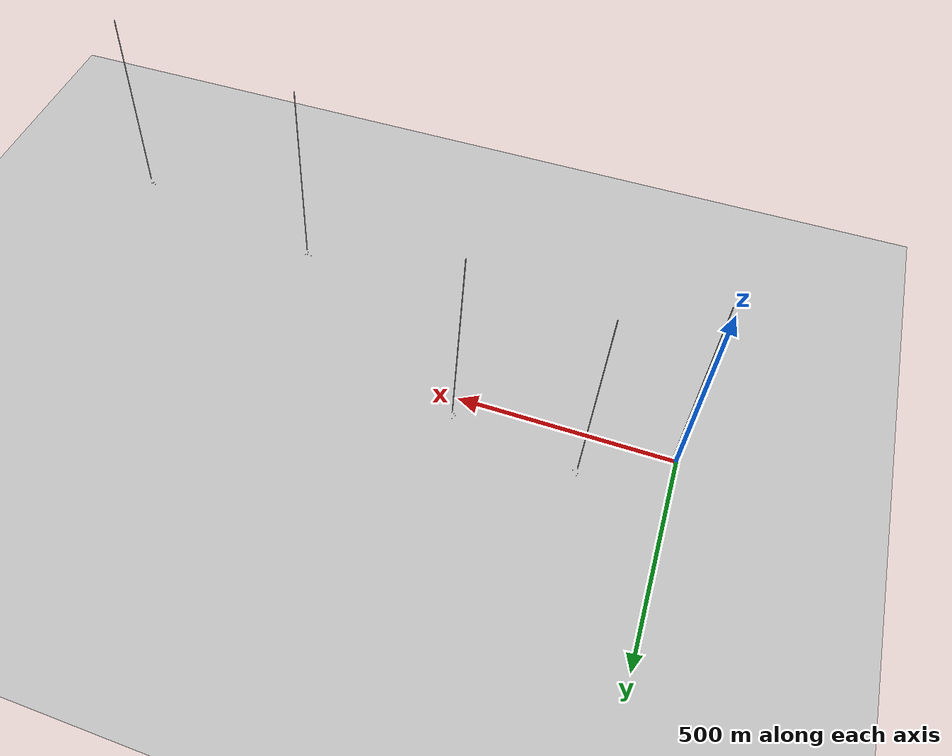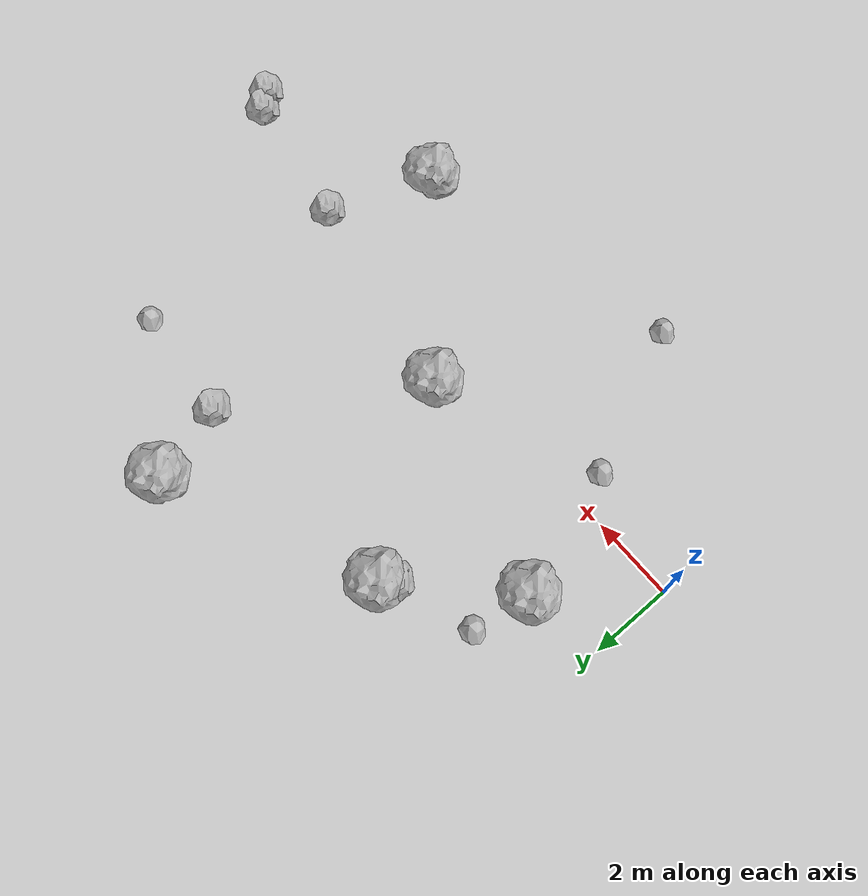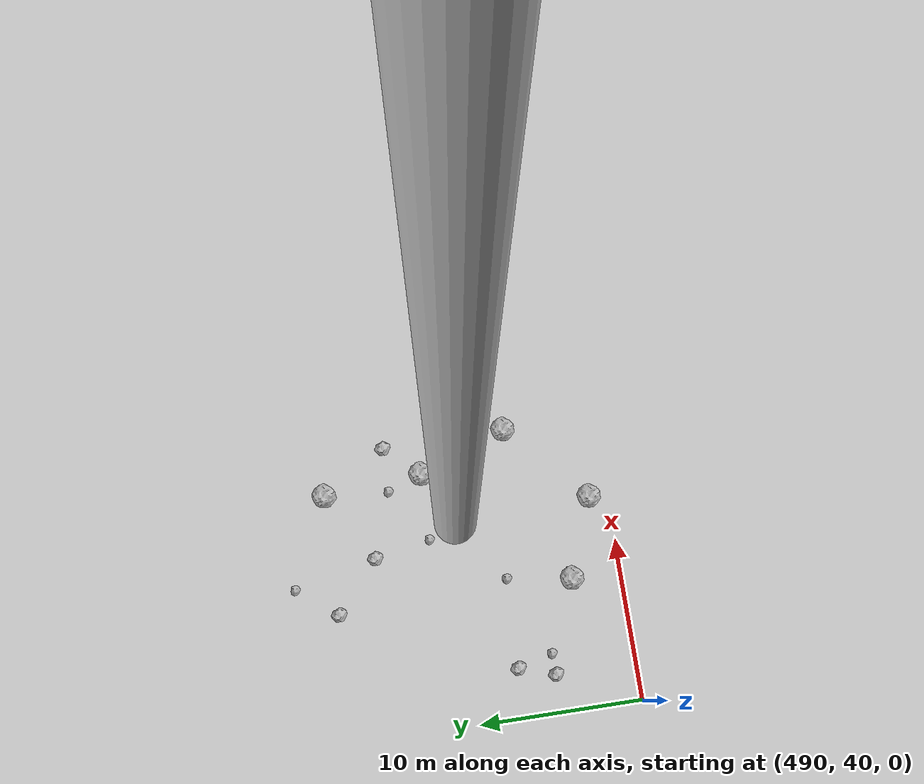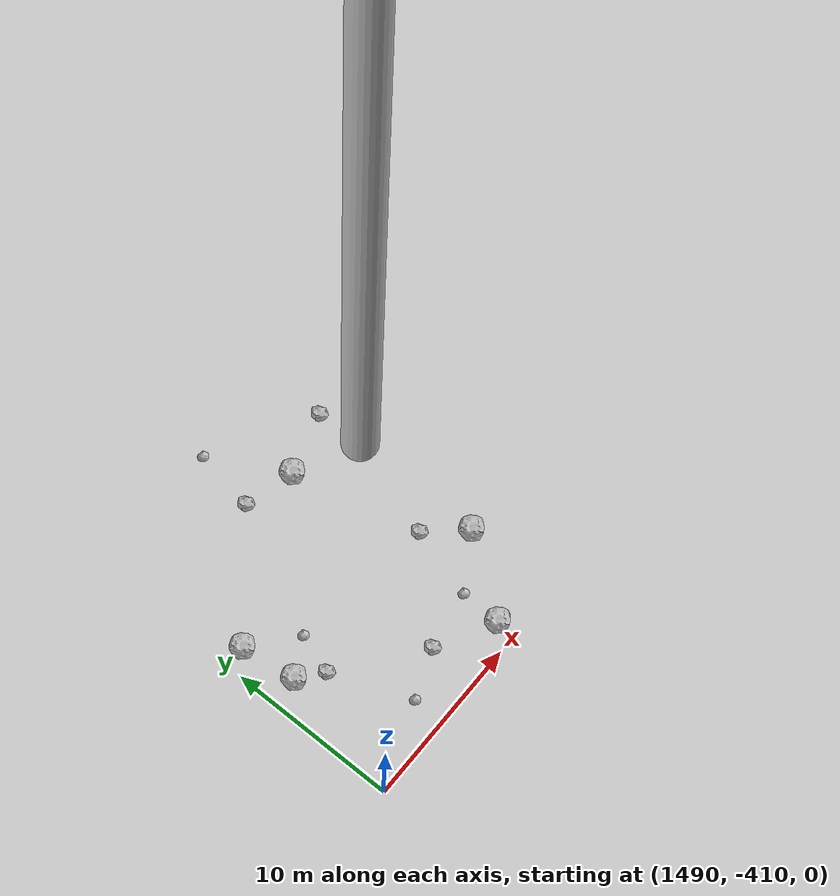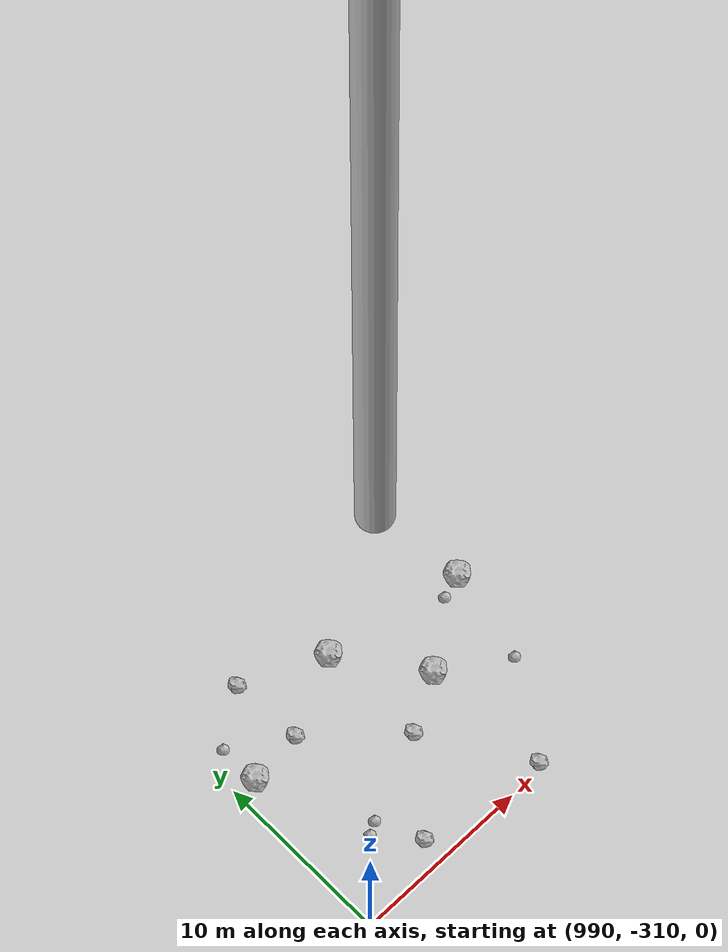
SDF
<?xml version="1.0" ?>
<sdf version="1.6">
  <world name="default">

    <include>
      <uri>model://custom_ground</uri>
    </include>

    <include>
      <uri>model://sun</uri>
    </include>

    <spherical_coordinates>
      <surface_model>EARTH_WGS84</surface_model>
      <latitude_deg>38.161479</latitude_deg>
      <longitude_deg>-122.454630</longitude_deg>
      <elevation>488.0</elevation>
      <heading_deg>90</heading_deg>
    </spherical_coordinates>

    <model name="rock1_0_0">
      <include>
        <uri>model://rock1</uri>
        <pose>11.440552809275255 -2.95362440770925 0.5 0 0 0</pose>
      </include>
    </model>
    <model name="rock1_0_1">
      <include>
        <uri>model://rock1</uri>
        <pose>4.261349126771641 4.756148157256991 0.5 0 0 0</pose>
      </include>
    </model>
    <model name="rock1_0_2">
      <include>
        <uri>model://rock1</uri>
        <pose>7.098923374966047 0.6881622954634281 0.5 0 0 0</pose>
      </include>
    </model>
    <model name="rock1_0_3">
      <include>
        <uri>model://rock1</uri>
        <pose>1.892262895972856 2.3761054028291504 0.5 0 0 0</pose>
      </include>
    </model>
    <model name="rock1_0_4">
      <include>
        <uri>model://rock1</uri>
        <pose>9.329840120952992 6.985289952956176 0.5 0 0 0</pose>
      </include>
    </model>
    <model name="rock2_0_0">
      <include>
        <uri>model://rock2</uri>
        <pose>3.9715910462367887 4.445836053169561 0.3 0 0 0</pose>
      </include>
    </model>
    <model name="rock2_0_1">
      <include>
        <uri>model://rock2</uri>
        <pose>15.799706513513264 -0.9330033461006355 0.3 0 0 0</pose>
      </include>
    </model>
    <model name="rock2_0_2">
      <include>
        <uri>model://rock2</uri>
        <pose>12.336023423125422 -0.33185004558047027 0.3 0 0 0</pose>
      </include>
    </model>
    <model name="rock2_0_3">
      <include>
        <uri>model://rock2</uri>
        <pose>16.17686246283634 -1.337375741154485 0.3 0 0 0</pose>
      </include>
    </model>
    <model name="rock2_0_4">
      <include>
        <uri>model://rock2</uri>
        <pose>9.869608695293186 5.082641272631465 0.3 0 0 0</pose>
      </include>
    </model>
    <model name="rock3_0_0">
      <include>
        <uri>model://rock3</uri>
        <pose>2.885104985776763 -0.8231799656227885 0.2 0 0 0</pose>
      </include>
    </model>
    <model name="rock3_0_1">
      <include>
        <uri>model://rock3</uri>
        <pose>2.0611019747393255 3.79341680020028 0.2 0 0 0</pose>
      </include>
    </model>
    <model name="rock3_0_2">
      <include>
        <uri>model://rock3</uri>
        <pose>4.523329203237967 -4.4316303679557745 0.2 0 0 0</pose>
      </include>
    </model>
    <model name="rock3_0_3">
      <include>
        <uri>model://rock3</uri>
        <pose>18.648334810440396 -4.941179139094192 0.2 0 0 0</pose>
      </include>
    </model>
    <model name="rock3_0_4">
      <include>
        <uri>model://rock3</uri>
        <pose>12.700758491430257 4.81042039549938 0.2 0 0 0</pose>
      </include>
    </model>
    <model name="rock1_1_0">
      <include>
        <uri>model://rock1</uri>
        <pose>208.62561029302447 97.53476530173782 0.5 0 0 0</pose>
      </include>
    </model>
    <model name="rock1_1_1">
      <include>
        <uri>model://rock1</uri>
        <pose>199.72064861839482 90.34207618418475 0.5 0 0 0</pose>
      </include>
    </model>
    <model name="rock1_1_2">
      <include>
        <uri>model://rock1</uri>
        <pose>196.46710785277378 102.3513775437886 0.5 0 0 0</pose>
      </include>
    </model>
    <model name="rock1_1_3">
      <include>
        <uri>model://rock1</uri>
        <pose>202.47625111898986 101.73781032908771 0.5 0 0 0</pose>
      </include>
    </model>
    <model name="rock1_1_4">
      <include>
        <uri>model://rock1</uri>
        <pose>197.33291834368754 105.1515458519208 0.5 0 0 0</pose>
      </include>
    </model>
    <model name="rock2_1_0">
      <include>
        <uri>model://rock2</uri>
        <pose>194.64539466753456 94.8040066841149 0.3 0 0 0</pose>
      </include>
    </model>
    <model name="rock2_1_1">
      <include>
        <uri>model://rock2</uri>
        <pose>206.55026775873753 95.49805831811835 0.3 0 0 0</pose>
      </include>
    </model>
    <model name="rock2_1_2">
      <include>
        <uri>model://rock2</uri>
        <pose>201.45214100116036 104.64028917948087 0.3 0 0 0</pose>
      </include>
    </model>
    <model name="rock2_1_3">
      <include>
        <uri>model://rock2</uri>
        <pose>198.86878380960695 96.96175588523255 0.3 0 0 0</pose>
      </include>
    </model>
    <model name="rock2_1_4">
      <include>
        <uri>model://rock2</uri>
        <pose>197.6350420649975 101.47990669780356 0.3 0 0 0</pose>
      </include>
    </model>
    <model name="rock3_1_0">
      <include>
        <uri>model://rock3</uri>
        <pose>206.37393662038073 95.08243446529444 0.2 0 0 0</pose>
      </include>
    </model>
    <model name="rock3_1_1">
      <include>
        <uri>model://rock3</uri>
        <pose>198.52014898898005 108.02791338583566 0.2 0 0 0</pose>
      </include>
    </model>
    <model name="rock3_1_2">
      <include>
        <uri>model://rock3</uri>
        <pose>193.3769523757687 101.12628173248939 0.2 0 0 0</pose>
      </include>
    </model>
    <model name="rock3_1_3">
      <include>
        <uri>model://rock3</uri>
        <pose>199.3595907078302 108.5397973715414 0.2 0 0 0</pose>
      </include>
    </model>
    <model name="rock3_1_4">
      <include>
        <uri>model://rock3</uri>
        <pose>208.98360552664508 98.59277311047026 0.2 0 0 0</pose>
      </include>
    </model>
    <model name="rock1_2_0">
      <include>
        <uri>model://rock1</uri>
        <pose>502.89696448491543 41.233622277231554 0.5 0 0 0</pose>
      </include>
    </model>
    <model name="rock1_2_1">
      <include>
        <uri>model://rock1</uri>
        <pose>505.8229471077627 51.28828854742323 0.5 0 0 0</pose>
      </include>
    </model>
    <model name="rock1_2_2">
      <include>
        <uri>model://rock1</uri>
        <pose>498.03776774531315 43.07247745222031 0.5 0 0 0</pose>
      </include>
    </model>
    <model name="rock1_2_3">
      <include>
        <uri>model://rock1</uri>
        <pose>507.82245416799185 45.8469958892196 0.5 0 0 0</pose>
      </include>
    </model>
    <model name="rock1_2_4">
      <include>
        <uri>model://rock1</uri>
        <pose>505.3514941722791 57.37056517591585 0.5 0 0 0</pose>
      </include>
    </model>
    <model name="rock2_2_0">
      <include>
        <uri>model://rock2</uri>
        <pose>501.03691890011817 54.816735129152626 0.3 0 0 0</pose>
      </include>
    </model>
    <model name="rock2_2_1">
      <include>
        <uri>model://rock2</uri>
        <pose>497.94043076259663 57.48928593533337 0.3 0 0 0</pose>
      </include>
    </model>
    <model name="rock2_2_2">
      <include>
        <uri>model://rock2</uri>
        <pose>493.0878150687752 47.16385311384377 0.3 0 0 0</pose>
      </include>
    </model>
    <model name="rock2_2_3">
      <include>
        <uri>model://rock2</uri>
        <pose>507.7595330501533 53.385919765759695 0.3 0 0 0</pose>
      </include>
    </model>
    <model name="rock2_2_4">
      <include>
        <uri>model://rock2</uri>
        <pose>492.3822363956097 44.96480479188108 0.3 0 0 0</pose>
      </include>
    </model>
    <model name="rock3_2_0">
      <include>
        <uri>model://rock3</uri>
        <pose>493.63552073689567 44.96784652571831 0.2 0 0 0</pose>
      </include>
    </model>
    <model name="rock3_2_1">
      <include>
        <uri>model://rock3</uri>
        <pose>505.00944485905023 53.398952827434485 0.2 0 0 0</pose>
      </include>
    </model>
    <model name="rock3_2_2">
      <include>
        <uri>model://rock3</uri>
        <pose>498.57420974931046 46.98701010828435 0.2 0 0 0</pose>
      </include>
    </model>
    <model name="rock3_2_3">
      <include>
        <uri>model://rock3</uri>
        <pose>499.8244782480496 59.93015966091258 0.2 0 0 0</pose>
      </include>
    </model>
    <model name="rock3_2_4">
      <include>
        <uri>model://rock3</uri>
        <pose>501.6776270932422 51.32281164789051 0.2 0 0 0</pose>
      </include>
    </model>
    <model name="rock1_3_0">
      <include>
        <uri>model://rock1</uri>
        <pose>998.5948276207006 -298.06142958794857 0.5 0 0 0</pose>
      </include>
    </model>
    <model name="rock1_3_1">
      <include>
        <uri>model://rock1</uri>
        <pose>1001.8059887137609 -302.45886425507365 0.5 0 0 0</pose>
      </include>
    </model>
    <model name="rock1_3_2">
      <include>
        <uri>model://rock1</uri>
        <pose>1006.644187796112 -293.23000815219837 0.5 0 0 0</pose>
      </include>
    </model>
    <model name="rock1_3_3">
      <include>
        <uri>model://rock1</uri>
        <pose>991.2363103435307 -300.33967501993703 0.5 0 0 0</pose>
      </include>
    </model>
    <model name="rock1_3_4">
      <include>
        <uri>model://rock1</uri>
        <pose>1006.4143115250549 -299.5063370652561 0.5 0 0 0</pose>
      </include>
    </model>
    <model name="rock2_3_0">
      <include>
        <uri>model://rock2</uri>
        <pose>998.7491105190877 -304.0948833996983 0.3 0 0 0</pose>
      </include>
    </model>
    <model name="rock2_3_1">
      <include>
        <uri>model://rock2</uri>
        <pose>994.2879137671214 -300.0181726524074 0.3 0 0 0</pose>
      </include>
    </model>
    <model name="rock2_3_2">
      <include>
        <uri>model://rock2</uri>
        <pose>1002.2055526350741 -309.68713079361163 0.3 0 0 0</pose>
      </include>
    </model>
    <model name="rock2_3_3">
      <include>
        <uri>model://rock2</uri>
        <pose>995.128081279623 -308.6004274703616 0.3 0 0 0</pose>
      </include>
    </model>
    <model name="rock2_3_4">
      <include>
        <uri>model://rock2</uri>
        <pose>994.0395424255465 -295.97184317514126 0.3 0 0 0</pose>
      </include>
    </model>
    <model name="rock3_3_0">
      <include>
        <uri>model://rock3</uri>
        <pose>993.9764575848657 -306.1708129986438 0.2 0 0 0</pose>
      </include>
    </model>
    <model name="rock3_3_1">
      <include>
        <uri>model://rock3</uri>
        <pose>991.1139251794365 -298.04689212654125 0.2 0 0 0</pose>
      </include>
    </model>
    <model name="rock3_3_2">
      <include>
        <uri>model://rock3</uri>
        <pose>1005.0512162102931 -299.9205547813039 0.2 0 0 0</pose>
      </include>
    </model>
    <model name="rock3_3_3">
      <include>
        <uri>model://rock3</uri>
        <pose>1005.3337368655201 -304.75950884987276 0.2 0 0 0</pose>
      </include>
    </model>
    <model name="rock3_3_4">
      <include>
        <uri>model://rock3</uri>
        <pose>993.2913648314944 -306.55316084794504 0.2 0 0 0</pose>
      </include>
    </model>
    <model name="rock1_4_0">
      <include>
        <uri>model://rock1</uri>
        <pose>1500.5934671119276 -394.8683061434934 0.5 0 0 0</pose>
      </include>
    </model>
    <model name="rock1_4_1">
      <include>
        <uri>model://rock1</uri>
        <pose>1491.7644974640075 -402.2802752984933 0.5 0 0 0</pose>
      </include>
    </model>
    <model name="rock1_4_2">
      <include>
        <uri>model://rock1</uri>
        <pose>1491.3215561101288 -399.0273955187607 0.5 0 0 0</pose>
      </include>
    </model>
    <model name="rock1_4_3">
      <include>
        <uri>model://rock1</uri>
        <pose>1501.2356734613334 -408.80368682397506 0.5 0 0 0</pose>
      </include>
    </model>
    <model name="rock1_4_4">
      <include>
        <uri>model://rock1</uri>
        <pose>1504.3441419560377 -404.469004812712 0.5 0 0 0</pose>
      </include>
    </model>
    <model name="rock2_4_0">
      <include>
        <uri>model://rock2</uri>
        <pose>1493.1323156680712 -403.42247745170886 0.3 0 0 0</pose>
      </include>
    </model>
    <model name="rock2_4_1">
      <include>
        <uri>model://rock2</uri>
        <pose>1497.834610774605 -406.99334941300924 0.3 0 0 0</pose>
      </include>
    </model>
    <model name="rock2_4_2">
      <include>
        <uri>model://rock2</uri>
        <pose>1502.4042830252954 -402.34715043652415 0.3 0 0 0</pose>
      </include>
    </model>
    <model name="rock2_4_3">
      <include>
        <uri>model://rock2</uri>
        <pose>1504.0949437341324 -393.8864585306659 0.3 0 0 0</pose>
      </include>
    </model>
    <model name="rock2_4_4">
      <include>
        <uri>model://rock2</uri>
        <pose>1497.595315122368 -394.03501024814193 0.3 0 0 0</pose>
      </include>
    </model>
    <model name="rock3_4_0">
      <include>
        <uri>model://rock3</uri>
        <pose>1493.884606112044 -401.1824243147434 0.2 0 0 0</pose>
      </include>
    </model>
    <model name="rock3_4_1">
      <include>
        <uri>model://rock3</uri>
        <pose>1494.9665024238252 -408.129940272099 0.2 0 0 0</pose>
      </include>
    </model>
    <model name="rock3_4_2">
      <include>
        <uri>model://rock3</uri>
        <pose>1501.7007473361523 -408.8982124280258 0.2 0 0 0</pose>
      </include>
    </model>
    <model name="rock3_4_3">
      <include>
        <uri>model://rock3</uri>
        <pose>1501.2310761976821 -406.4317826974602 0.2 0 0 0</pose>
      </include>
    </model>
    <model name="rock3_4_4">
      <include>
        <uri>model://rock3</uri>
        <pose>1498.1496851176369 -390.5354226455424 0.2 0 0 0</pose>
      </include>
    </model>

    <model name="cylinder_1">
      <static>true</static>
      <link name="link">
        <visual name="visual">
          <geometry>
            <cylinder>
              <radius>1</radius>
              <length>500</length>
            </cylinder>
          </geometry>
        </visual>
      </link>
      <pose>10 0 270 0 0 0</pose>
    </model>

    <model name="cylinder_2">
      <static>true</static>
      <link name="link">
        <visual name="visual">
          <geometry>
            <cylinder>
              <radius>1</radius>
              <length>500</length>
            </cylinder>
          </geometry>
        </visual>
      </link>
      <pose>200 100 270 0 0 0</pose>
    </model>

    <model name="cylinder_3">
      <static>true</static>
      <link name="link">
        <visual name="visual">
          <geometry>
            <cylinder>
              <radius>1</radius>
              <length>500</length>
            </cylinder>
          </geometry>
        </visual>
      </link>
      <pose>500 50 270 0 0 0</pose>
    </model>

    <model name="cylinder_4">
      <static>true</static>
      <link name="link">
        <visual name="visual">
          <geometry>
            <cylinder>
              <radius>1</radius>
              <length>500</length>
            </cylinder>
          </geometry>
        </visual>
      </link>
      <pose>1000 -300 270 0 0 0</pose>
    </model>

    <model name="cylinder_5">
      <static>true</static>
      <link name="link">
        <visual name="visual">
          <geometry>
            <cylinder>
              <radius>1</radius>
              <length>500</length>
            </cylinder>
          </geometry>
        </visual>
      </link>
      <pose>1500 -400 270 0 0 0</pose>
    </model>

  </world>
</sdf>

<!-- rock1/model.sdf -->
<sdf version="1.6">
  <model name="rock1">
    <static>true</static> <!-- Set to true if the model should not move -->
    <pose>0 0 0 0 0 0</pose>

    <!--z offset is 0.5 for full scale-->

    <link name="link">
      <collision name="rock1_collision">
        <geometry>
          <mesh>
            <uri>model://meshes/rock1.dae</uri>
          </mesh>
        </geometry>
      </collision>
      <visual name="rock1_visual">
        <geometry>
          <mesh>
            <uri>model://meshes/rock1.dae</uri>
          </mesh>
        </geometry>
        <material>
          <script>
            <uri>model://materials/scripts/sand_pebbles.material</uri>
            <name>custom_ground/Image</name>
          </script>
        </material>
      </visual>
    </link>
  </model>
</sdf>

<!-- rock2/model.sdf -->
<sdf version="1.6">
  <model name="rock2">
    <static>true</static> <!-- Set to true if the model should not move -->
    <pose>0 0 0 0 0 0</pose>

    <!--z offset is 0.3 for full scale-->

    <link name="link">
      <collision name="rock2_collision">
        <geometry>
          <mesh>
            <uri>model://meshes/rock2.dae</uri>
          </mesh>
        </geometry>
      </collision>
      <visual name="rock2_visual">
        <geometry>
          <mesh>
            <uri>model://meshes/rock2.dae</uri>
          </mesh>
        </geometry>
        <material>
          <script>
            <uri>model://materials/scripts/sand_pebbles.material</uri>
            <name>custom_ground/Image</name>
          </script>
        </material>
      </visual>
    </link>
  </model>
</sdf>

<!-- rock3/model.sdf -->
<sdf version="1.6">
  <model name="rock3">
    <static>true</static> <!-- Set to true if the model should not move -->
    <pose>0 0 0 0 0 0</pose>

    <!--z offset is 0.2 for full scale-->

    <link name="link">
      <collision name="rock3_collision">
        <geometry>
          <mesh>
            <uri>model://meshes/rock3.dae</uri>
          </mesh>
        </geometry>
      </collision>
      <visual name="rock3_visual">
        <geometry>
          <mesh>
            <uri>model://meshes/rock3.dae</uri>
          </mesh>
        </geometry>
        <material>
          <script>
            <uri>model://materials/scripts/sand_pebbles.material</uri>
            <name>custom_ground/Image</name>
          </script>
        </material>
      </visual>
    </link>
  </model>
</sdf>

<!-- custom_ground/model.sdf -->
<sdf version="1.6">
  <model name="custom_ground">
    <static>true</static> <!-- Ground is static and immovable -->
    <link name="ground_link">
      <pose>240 0 0 0 0 0</pose> <!-- Position and orientation relative to the world -->
      <!-- Visual Representation -->
      <visual name="ground_visual">
        <geometry>
          <plane>
            <normal>0 0 1</normal> <!-- Upward facing plane -->
            <size>500 500</size> <!-- Size of the plane -->
          </plane>
        </geometry>
        <material>
          <script>
            <uri>model://materials/scripts/sand_pebbles.material</uri>
            <name>custom_ground/Image</name>
          </script>
        </material>
      </visual>

      <!-- Collision Representation -->
      <collision name="ground_collision">
        <geometry>
          <plane>
            <normal>0 0 1</normal>
            <size>100 100</size>
          </plane>
        </geometry>
      </collision>

    </link>
  </model>
</sdf>
